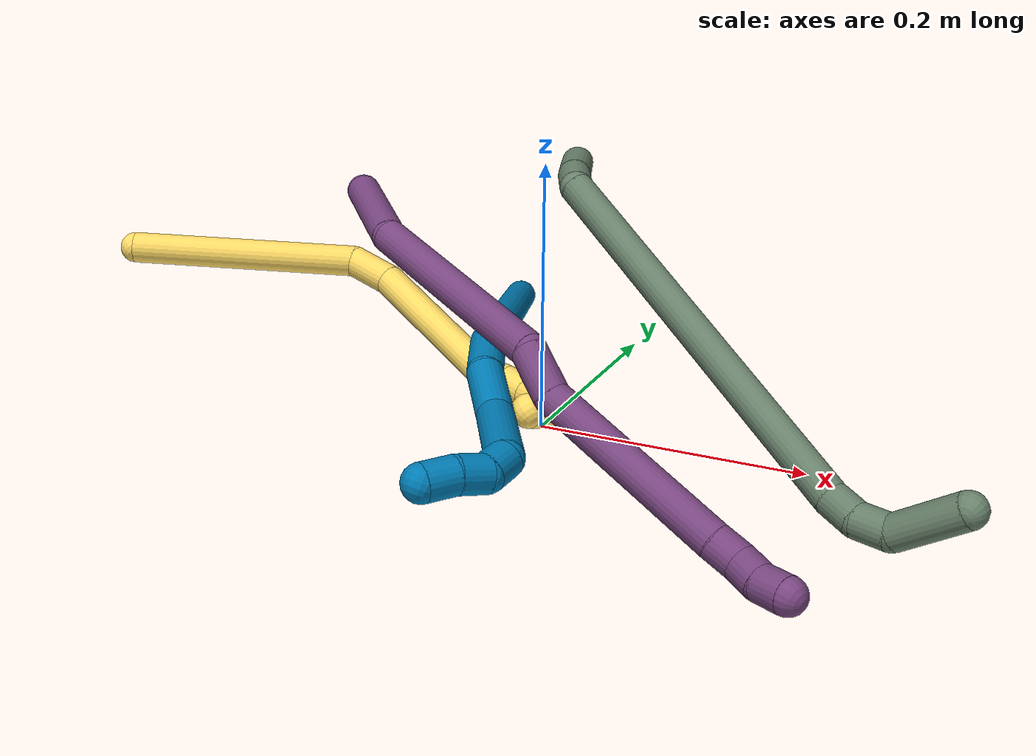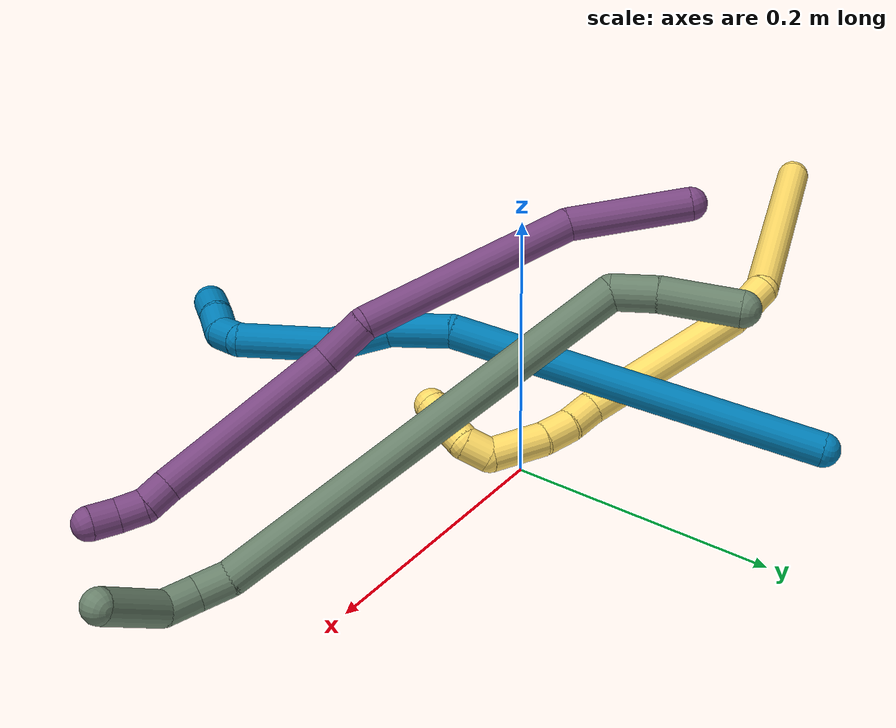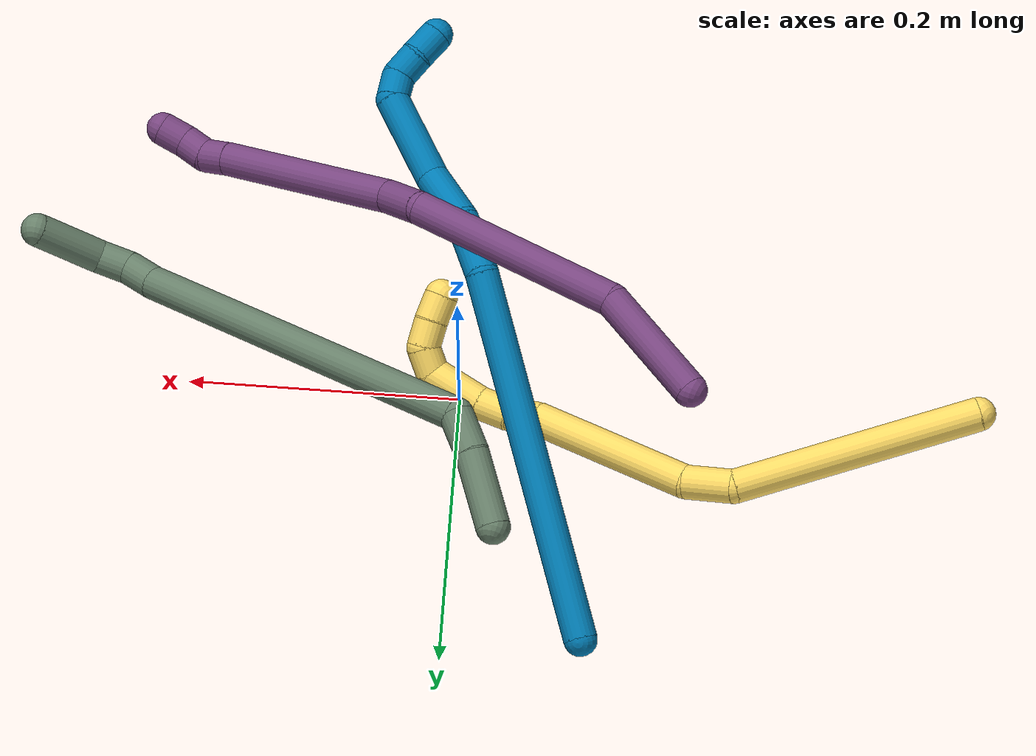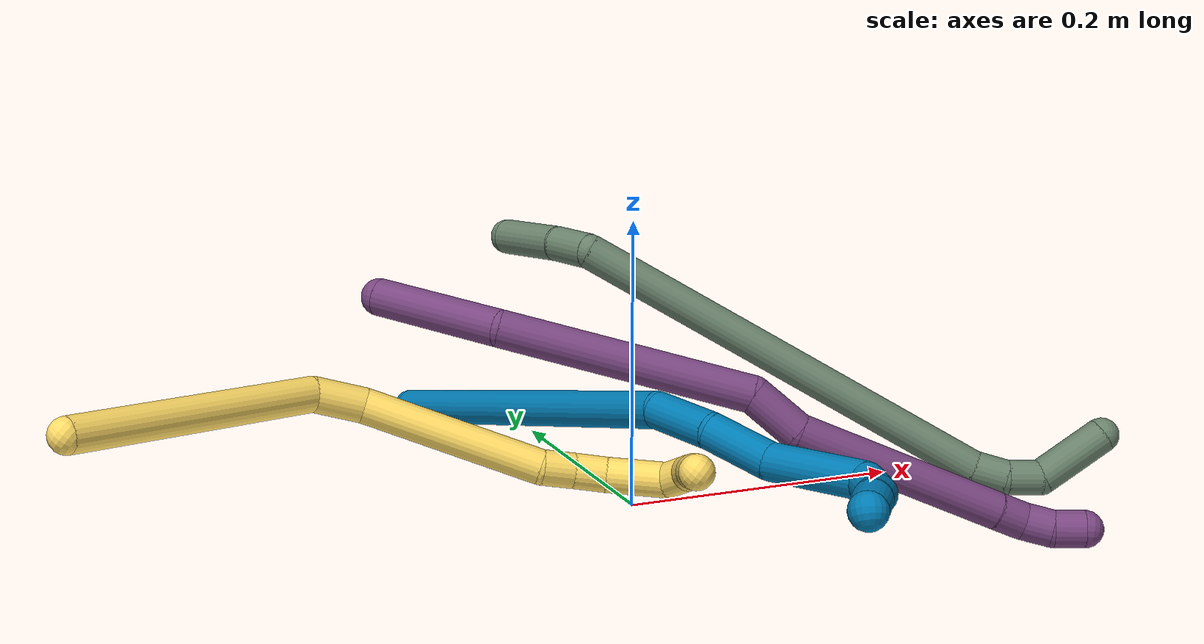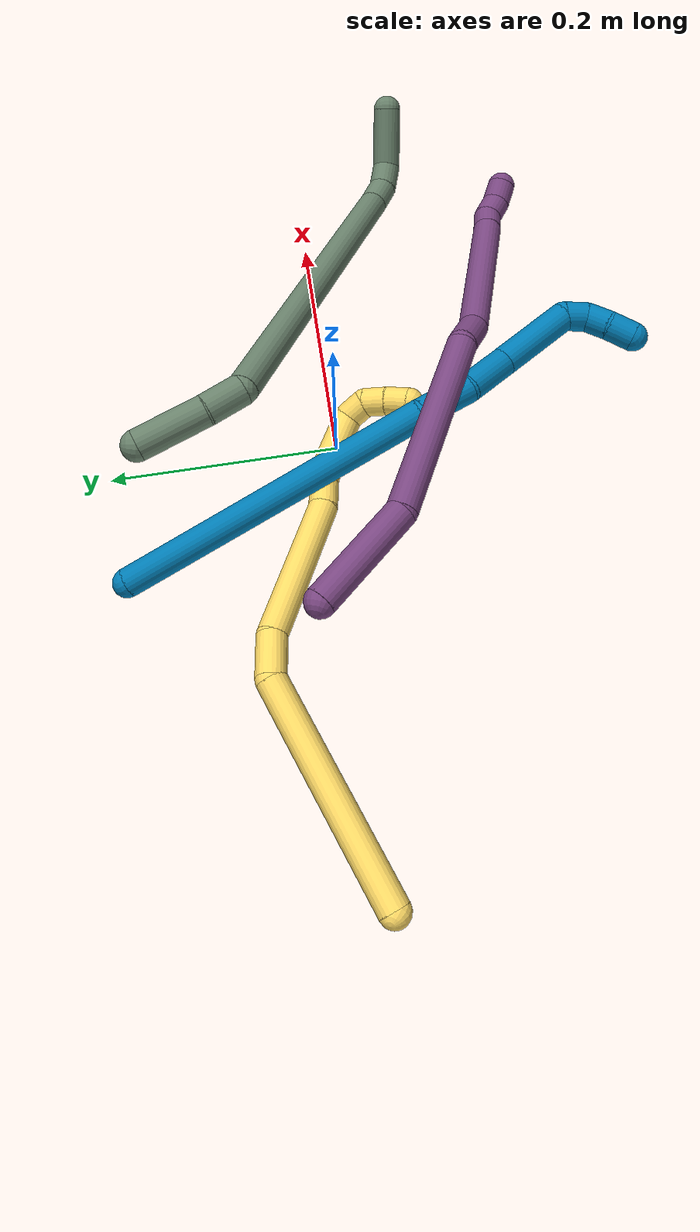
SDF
<sdf version="1.7">
 <world name="default">
  <model name="bin">
   <static>1</static>
   <link name="bottom">
    <collision name="collision-bottom">
     <pose>0 0 -0.01 0 -0 0</pose>
     <geometry><box><size>0.8 0.6 0.02</size></box></geometry>
     <surface>
      <friction><ode><mu>100</mu><mu2>100</mu2></ode></friction>
      <contact><collide_bitmask>65535</collide_bitmask></contact>
     </surface>
    </collision>
   </link>
   <link name="west_wall">
    <collision name="collision-west_wall">
     <pose>-0.41 0 0.1 0 -0 0</pose>
     <geometry><box><size>0.02 0.6 0.2</size></box></geometry>
     <surface>
      <friction><ode><mu>100</mu><mu2>100</mu2></ode></friction>
      <contact><collide_bitmask>65535</collide_bitmask></contact>
     </surface>
    </collision>
   </link>
   <link name="east_wall">
    <collision name="collision-east_wall">
     <pose>0.41 0 0.1 0 -0 0</pose>
     <geometry><box><size>0.02 0.6 0.2</size></box></geometry>
     <surface>
      <friction><ode><mu>100</mu><mu2>100</mu2></ode></friction>
      <contact><collide_bitmask>65535</collide_bitmask></contact>
     </surface>
    </collision>
   </link>
   <link name="south_wall">
    <collision name="collision-south_wall">
     <pose>0 -0.31 0.1 0 -0 0</pose>
     <geometry><box><size>0.8 0.02 0.2</size></box></geometry>
     <surface>
      <friction><ode><mu>100</mu><mu2>100</mu2></ode></friction>
      <contact><collide_bitmask>65535</collide_bitmask></contact>
     </surface>
    </collision>
   </link>
   <link name="north_wall">
    <collision name="collision-north_wall">
     <pose>0 0.31 0.1 0 -0 0</pose>
     <geometry><box><size>0.8 0.02 0.2</size></box></geometry>
     <surface>
      <friction><ode><mu>100</mu><mu2>100</mu2></ode></friction>
      <contact><collide_bitmask>65535</collide_bitmask></contact>
     </surface>
    </collision>
   </link>
  </model>
  <model name="5">
   <static>0</static>
   <link name="5">
    <collision name="collision-cylinder-e_1_1_4">
     <pose>0.069428 0.036761 -0.048498 -2.493 0.851104 -1.86529</pose>
     <geometry><cylinder><radius>0.0125</radius><length>0.184647</length></cylinder></geometry>
     <surface>
      <friction><ode><mu>1.16</mu><mu2>1.16</mu2><slip1>0</slip1><slip2>0</slip2></ode></friction>
      <contact><ode><kp>1e+06</kp><kd>1</kd><max_vel>0</max_vel><min_depth>0.001</min_depth></ode></contact>
     </surface>
    </collision>
    <visual name="visual-cylinder-e_1_1_4">
     <pose>0.069428 0.036761 -0.048498 -2.493 0.851104 -1.86529</pose>
     <geometry><cylinder><radius>0.0125</radius><length>0.184647</length></cylinder></geometry>
     <material><ambient>1 0.858824 0.4 1</ambient></material>
    </visual>
    <collision name="collision-cylinder-e_2_4_5">
     <pose>0.147449 0.07552 -0.113034 -3.01758 0.488652 -2.65346</pose>
     <geometry><cylinder><radius>0.0125</radius><length>0.036609</length></cylinder></geometry>
     <surface>
      <friction><ode><mu>1.16</mu><mu2>1.16</mu2><slip1>0</slip1><slip2>0</slip2></ode></friction>
      <contact><ode><kp>1e+06</kp><kd>1</kd><max_vel>0</max_vel><min_depth>0.001</min_depth></ode></contact>
     </surface>
    </collision>
    <visual name="visual-cylinder-e_2_4_5">
     <pose>0.147449 0.07552 -0.113034 -3.01758 0.488652 -2.65346</pose>
     <geometry><cylinder><radius>0.0125</radius><length>0.036609</length></cylinder></geometry>
     <material><ambient>1 0.858824 0.4 1</ambient></material>
    </visual>
    <collision name="collision-cylinder-e_3_5_6">
     <pose>0.17445 0.06833 -0.19036 2.99277 0.288733 2.19391</pose>
     <geometry><cylinder><radius>0.0125</radius><length>0.129298</length></cylinder></geometry>
     <surface>
      <friction><ode><mu>1.16</mu><mu2>1.16</mu2><slip1>0</slip1><slip2>0</slip2></ode></friction>
      <contact><ode><kp>1e+06</kp><kd>1</kd><max_vel>0</max_vel><min_depth>0.001</min_depth></ode></contact>
     </surface>
    </collision>
    <visual name="visual-cylinder-e_3_5_6">
     <pose>0.17445 0.06833 -0.19036 2.99277 0.288733 2.19391</pose>
     <geometry><cylinder><radius>0.0125</radius><length>0.129298</length></cylinder></geometry>
     <material><ambient>1 0.858824 0.4 1</ambient></material>
    </visual>
    <collision name="collision-cylinder-e_4_6_7">
     <pose>0.199181 0.059407 -0.261474 -3.11459 0.571635 -3.04978</pose>
     <geometry><cylinder><radius>0.0125</radius><length>0.023376</length></cylinder></geometry>
     <surface>
      <friction><ode><mu>1.16</mu><mu2>1.16</mu2><slip1>0</slip1><slip2>0</slip2></ode></friction>
      <contact><ode><kp>1e+06</kp><kd>1</kd><max_vel>0</max_vel><min_depth>0.001</min_depth></ode></contact>
     </surface>
    </collision>
    <visual name="visual-cylinder-e_4_6_7">
     <pose>0.199181 0.059407 -0.261474 -3.11459 0.571635 -3.04978</pose>
     <geometry><cylinder><radius>0.0125</radius><length>0.023376</length></cylinder></geometry>
     <material><ambient>1 0.858824 0.4 1</ambient></material>
    </visual>
    <collision name="collision-cylinder-e_5_7_8">
     <pose>0.211092 0.057743 -0.281292 2.95087 0.502154 2.42771</pose>
     <geometry><cylinder><radius>0.0125</radius><length>0.02322</length></cylinder></geometry>
     <surface>
      <friction><ode><mu>1.16</mu><mu2>1.16</mu2><slip1>0</slip1><slip2>0</slip2></ode></friction>
      <contact><ode><kp>1e+06</kp><kd>1</kd><max_vel>0</max_vel><min_depth>0.001</min_depth></ode></contact>
     </surface>
    </collision>
    <visual name="visual-cylinder-e_5_7_8">
     <pose>0.211092 0.057743 -0.281292 2.95087 0.502154 2.42771</pose>
     <geometry><cylinder><radius>0.0125</radius><length>0.02322</length></cylinder></geometry>
     <material><ambient>1 0.858824 0.4 1</ambient></material>
    </visual>
    <collision name="collision-cylinder-e_6_8_9">
     <pose>0.226078 0.048495 -0.308769 2.74518 0.460286 1.72425</pose>
     <geometry><cylinder><radius>0.0125</radius><length>0.042314</length></cylinder></geometry>
     <surface>
      <friction><ode><mu>1.16</mu><mu2>1.16</mu2><slip1>0</slip1><slip2>0</slip2></ode></friction>
      <contact><ode><kp>1e+06</kp><kd>1</kd><max_vel>0</max_vel><min_depth>0.001</min_depth></ode></contact>
     </surface>
    </collision>
    <visual name="visual-cylinder-e_6_8_9">
     <pose>0.226078 0.048495 -0.308769 2.74518 0.460286 1.72425</pose>
     <geometry><cylinder><radius>0.0125</radius><length>0.042314</length></cylinder></geometry>
     <material><ambient>1 0.858824 0.4 1</ambient></material>
    </visual>
    <collision name="collision-cylinder-e_7_9_10">
     <pose>0.238784 0.032104 -0.329635 1.92747 0.329199 0.469483</pose>
     <geometry><cylinder><radius>0.0125</radius><length>0.020462</length></cylinder></geometry>
     <surface>
      <friction><ode><mu>1.16</mu><mu2>1.16</mu2><slip1>0</slip1><slip2>0</slip2></ode></friction>
      <contact><ode><kp>1e+06</kp><kd>1</kd><max_vel>0</max_vel><min_depth>0.001</min_depth></ode></contact>
     </surface>
    </collision>
    <visual name="visual-cylinder-e_7_9_10">
     <pose>0.238784 0.032104 -0.329635 1.92747 0.329199 0.469483</pose>
     <geometry><cylinder><radius>0.0125</radius><length>0.020462</length></cylinder></geometry>
     <material><ambient>1 0.858824 0.4 1</ambient></material>
    </visual>
    <collision name="collision-cylinder-e_8_10_11">
     <pose>0.239998 0.013229 -0.333154 1.58493 -0.210335 -0.213307</pose>
     <geometry><cylinder><radius>0.0125</radius><length>0.02005</length></cylinder></geometry>
     <surface>
      <friction><ode><mu>1.16</mu><mu2>1.16</mu2><slip1>0</slip1><slip2>0</slip2></ode></friction>
      <contact><ode><kp>1e+06</kp><kd>1</kd><max_vel>0</max_vel><min_depth>0.001</min_depth></ode></contact>
     </surface>
    </collision>
    <visual name="visual-cylinder-e_8_10_11">
     <pose>0.239998 0.013229 -0.333154 1.58493 -0.210335 -0.213307</pose>
     <geometry><cylinder><radius>0.0125</radius><length>0.02005</length></cylinder></geometry>
     <material><ambient>1 0.858824 0.4 1</ambient></material>
    </visual>
    <collision name="collision-cylinder-e_9_11_2">
     <pose>0.234775 -0.006083 -0.333144 1.55516 -0.318008 -0.313155</pose>
     <geometry><cylinder><radius>0.0125</radius><length>0.020024</length></cylinder></geometry>
     <surface>
      <friction><ode><mu>1.16</mu><mu2>1.16</mu2><slip1>0</slip1><slip2>0</slip2></ode></friction>
      <contact><ode><kp>1e+06</kp><kd>1</kd><max_vel>0</max_vel><min_depth>0.001</min_depth></ode></contact>
     </surface>
    </collision>
    <visual name="visual-cylinder-e_9_11_2">
     <pose>0.234775 -0.006083 -0.333144 1.55516 -0.318008 -0.313155</pose>
     <geometry><cylinder><radius>0.0125</radius><length>0.020024</length></cylinder></geometry>
     <material><ambient>1 0.858824 0.4 1</ambient></material>
    </visual>
    <collision name="collision-sphere-2">
     <pose>0.231644 -0.015592 -0.332995 0 -0 0</pose>
     <geometry><sphere><radius>0.0125</radius></sphere></geometry>
     <surface>
      <friction><ode><mu>1.16</mu><mu2>1.16</mu2><slip1>0</slip1><slip2>0</slip2></ode></friction>
      <contact><ode><kp>1e+06</kp><kd>1</kd><max_vel>0</max_vel><min_depth>0.001</min_depth></ode></contact>
     </surface>
    </collision>
    <visual name="visual-sphere-2">
     <pose>0.231644 -0.015592 -0.332995 0 -0 0</pose>
     <geometry><sphere><radius>0.0125</radius></sphere></geometry>
     <material><ambient>1 0.858824 0.4 1</ambient></material>
    </visual>
    <collision name="collision-sphere-11">
     <pose>0.237905 0.003426 -0.333293 0 -0 0</pose>
     <geometry><sphere><radius>0.0125</radius></sphere></geometry>
     <surface>
      <friction><ode><mu>1.16</mu><mu2>1.16</mu2><slip1>0</slip1><slip2>0</slip2></ode></friction>
      <contact><ode><kp>1e+06</kp><kd>1</kd><max_vel>0</max_vel><min_depth>0.001</min_depth></ode></contact>
     </surface>
    </collision>
    <visual name="visual-sphere-11">
     <pose>0.237905 0.003426 -0.333293 0 -0 0</pose>
     <geometry><sphere><radius>0.0125</radius></sphere></geometry>
     <material><ambient>1 0.858824 0.4 1</ambient></material>
    </visual>
    <collision name="collision-sphere-10">
     <pose>0.242092 0.023032 -0.333016 0 -0 0</pose>
     <geometry><sphere><radius>0.0125</radius></sphere></geometry>
     <surface>
      <friction><ode><mu>1.16</mu><mu2>1.16</mu2><slip1>0</slip1><slip2>0</slip2></ode></friction>
      <contact><ode><kp>1e+06</kp><kd>1</kd><max_vel>0</max_vel><min_depth>0.001</min_depth></ode></contact>
     </surface>
    </collision>
    <visual name="visual-sphere-10">
     <pose>0.242092 0.023032 -0.333016 0 -0 0</pose>
     <geometry><sphere><radius>0.0125</radius></sphere></geometry>
     <material><ambient>1 0.858824 0.4 1</ambient></material>
    </visual>
    <collision name="collision-sphere-9">
     <pose>0.235477 0.041176 -0.326255 0 -0 0</pose>
     <geometry><sphere><radius>0.0125</radius></sphere></geometry>
     <surface>
      <friction><ode><mu>1.16</mu><mu2>1.16</mu2><slip1>0</slip1><slip2>0</slip2></ode></friction>
      <contact><ode><kp>1e+06</kp><kd>1</kd><max_vel>0</max_vel><min_depth>0.001</min_depth></ode></contact>
     </surface>
    </collision>
    <visual name="visual-sphere-9">
     <pose>0.235477 0.041176 -0.326255 0 -0 0</pose>
     <geometry><sphere><radius>0.0125</radius></sphere></geometry>
     <material><ambient>1 0.858824 0.4 1</ambient></material>
    </visual>
    <collision name="collision-sphere-4">
     <pose>0.138856 0.073521 -0.096995 0 -0 0</pose>
     <geometry><sphere><radius>0.0125</radius></sphere></geometry>
     <surface>
      <friction><ode><mu>1.16</mu><mu2>1.16</mu2><slip1>0</slip1><slip2>0</slip2></ode></friction>
      <contact><ode><kp>1e+06</kp><kd>1</kd><max_vel>0</max_vel><min_depth>0.001</min_depth></ode></contact>
     </surface>
    </collision>
    <visual name="visual-sphere-4">
     <pose>0.138856 0.073521 -0.096995 0 -0 0</pose>
     <geometry><sphere><radius>0.0125</radius></sphere></geometry>
     <material><ambient>1 0.858824 0.4 1</ambient></material>
    </visual>
    <collision name="collision-sphere-1">
     <geometry><sphere><radius>0.0125</radius></sphere></geometry>
     <surface>
      <friction><ode><mu>1.16</mu><mu2>1.16</mu2><slip1>0</slip1><slip2>0</slip2></ode></friction>
      <contact><ode><kp>1e+06</kp><kd>1</kd><max_vel>0</max_vel><min_depth>0.001</min_depth></ode></contact>
     </surface>
    </collision>
    <visual name="visual-sphere-1">
     <geometry><sphere><radius>0.0125</radius></sphere></geometry>
     <material><ambient>1 0.858824 0.4 1</ambient></material>
    </visual>
    <collision name="collision-sphere-8">
     <pose>0.21668 0.055814 -0.291284 0 -0 0</pose>
     <geometry><sphere><radius>0.0125</radius></sphere></geometry>
     <surface>
      <friction><ode><mu>1.16</mu><mu2>1.16</mu2><slip1>0</slip1><slip2>0</slip2></ode></friction>
      <contact><ode><kp>1e+06</kp><kd>1</kd><max_vel>0</max_vel><min_depth>0.001</min_depth></ode></contact>
     </surface>
    </collision>
    <visual name="visual-sphere-8">
     <pose>0.21668 0.055814 -0.291284 0 -0 0</pose>
     <geometry><sphere><radius>0.0125</radius></sphere></geometry>
     <material><ambient>1 0.858824 0.4 1</ambient></material>
    </visual>
    <collision name="collision-sphere-5">
     <pose>0.156042 0.077519 -0.129072 0 -0 0</pose>
     <geometry><sphere><radius>0.0125</radius></sphere></geometry>
     <surface>
      <friction><ode><mu>1.16</mu><mu2>1.16</mu2><slip1>0</slip1><slip2>0</slip2></ode></friction>
      <contact><ode><kp>1e+06</kp><kd>1</kd><max_vel>0</max_vel><min_depth>0.001</min_depth></ode></contact>
     </surface>
    </collision>
    <visual name="visual-sphere-5">
     <pose>0.156042 0.077519 -0.129072 0 -0 0</pose>
     <geometry><sphere><radius>0.0125</radius></sphere></geometry>
     <material><ambient>1 0.858824 0.4 1</ambient></material>
    </visual>
    <collision name="collision-sphere-6">
     <pose>0.192858 0.059141 -0.251647 0 -0 0</pose>
     <geometry><sphere><radius>0.0125</radius></sphere></geometry>
     <surface>
      <friction><ode><mu>1.16</mu><mu2>1.16</mu2><slip1>0</slip1><slip2>0</slip2></ode></friction>
      <contact><ode><kp>1e+06</kp><kd>1</kd><max_vel>0</max_vel><min_depth>0.001</min_depth></ode></contact>
     </surface>
    </collision>
    <visual name="visual-sphere-6">
     <pose>0.192858 0.059141 -0.251647 0 -0 0</pose>
     <geometry><sphere><radius>0.0125</radius></sphere></geometry>
     <material><ambient>1 0.858824 0.4 1</ambient></material>
    </visual>
    <collision name="collision-sphere-7">
     <pose>0.205504 0.059672 -0.2713 0 -0 0</pose>
     <geometry><sphere><radius>0.0125</radius></sphere></geometry>
     <surface>
      <friction><ode><mu>1.16</mu><mu2>1.16</mu2><slip1>0</slip1><slip2>0</slip2></ode></friction>
      <contact><ode><kp>1e+06</kp><kd>1</kd><max_vel>0</max_vel><min_depth>0.001</min_depth></ode></contact>
     </surface>
    </collision>
    <visual name="visual-sphere-7">
     <pose>0.205504 0.059672 -0.2713 0 -0 0</pose>
     <geometry><sphere><radius>0.0125</radius></sphere></geometry>
     <material><ambient>1 0.858824 0.4 1</ambient></material>
    </visual>
    <inertial>
     <pose>0.148593 0.047938 -0.167022 0 -0 0</pose>
     <mass>0.5</mass>
     <inertia>
      <ixx>-0.000377</ixx>
      <ixy>0</ixy>
      <ixz>0</ixz>
      <iyy>0.000291</iyy>
      <iyz>0</iyz>
      <izz>-0.000665</izz>
     </inertia>
    </inertial>
   </link>
   <pose>-0.376824 0.013978 0.088391 -0.682686 -0.679341 0.383518</pose>
  </model>
  <model name="9">
   <static>0</static>
   <link name="9">
    <collision name="collision-cylinder-e_1_1_4">
     <pose>-0.014121 -0.13249 -0.036331 1.83844 -0.102425 -0.134209</pose>
     <geometry><cylinder><radius>0.0125</radius><length>0.27621</length></cylinder></geometry>
     <surface>
      <friction><ode><mu>1.16</mu><mu2>1.16</mu2><slip1>0</slip1><slip2>0</slip2></ode></friction>
      <contact><ode><kp>1e+06</kp><kd>1</kd><max_vel>0</max_vel><min_depth>0.001</min_depth></ode></contact>
     </surface>
    </collision>
    <visual name="visual-cylinder-e_1_1_4">
     <pose>-0.014121 -0.13249 -0.036331 1.83844 -0.102425 -0.134209</pose>
     <geometry><cylinder><radius>0.0125</radius><length>0.27621</length></cylinder></geometry>
     <material><ambient>0 0.490196 0.709804 1</ambient></material>
    </visual>
    <collision name="collision-cylinder-e_2_4_5">
     <pose>-0.02708 -0.285361 -0.084446 2.09501 0.049286 0.085392</pose>
     <geometry><cylinder><radius>0.0125</radius><length>0.047143</length></cylinder></geometry>
     <surface>
      <friction><ode><mu>1.16</mu><mu2>1.16</mu2><slip1>0</slip1><slip2>0</slip2></ode></friction>
      <contact><ode><kp>1e+06</kp><kd>1</kd><max_vel>0</max_vel><min_depth>0.001</min_depth></ode></contact>
     </surface>
    </collision>
    <visual name="visual-cylinder-e_2_4_5">
     <pose>-0.02708 -0.285361 -0.084446 2.09501 0.049286 0.085392</pose>
     <geometry><cylinder><radius>0.0125</radius><length>0.047143</length></cylinder></geometry>
     <material><ambient>0 0.490196 0.709804 1</ambient></material>
    </visual>
    <collision name="collision-cylinder-e_3_5_6">
     <pose>-0.019238 -0.322954 -0.109285 2.21973 0.299948 0.59076</pose>
     <geometry><cylinder><radius>0.0125</radius><length>0.045224</length></cylinder></geometry>
     <surface>
      <friction><ode><mu>1.16</mu><mu2>1.16</mu2><slip1>0</slip1><slip2>0</slip2></ode></friction>
      <contact><ode><kp>1e+06</kp><kd>1</kd><max_vel>0</max_vel><min_depth>0.001</min_depth></ode></contact>
     </surface>
    </collision>
    <visual name="visual-cylinder-e_3_5_6">
     <pose>-0.019238 -0.322954 -0.109285 2.21973 0.299948 0.59076</pose>
     <geometry><cylinder><radius>0.0125</radius><length>0.045224</length></cylinder></geometry>
     <material><ambient>0 0.490196 0.709804 1</ambient></material>
    </visual>
    <collision name="collision-cylinder-e_4_6_7">
     <pose>-0.008015 -0.371744 -0.134955 1.95085 0.132774 0.195678</pose>
     <geometry><cylinder><radius>0.0125</radius><length>0.068615</length></cylinder></geometry>
     <surface>
      <friction><ode><mu>1.16</mu><mu2>1.16</mu2><slip1>0</slip1><slip2>0</slip2></ode></friction>
      <contact><ode><kp>1e+06</kp><kd>1</kd><max_vel>0</max_vel><min_depth>0.001</min_depth></ode></contact>
     </surface>
    </collision>
    <visual name="visual-cylinder-e_4_6_7">
     <pose>-0.008015 -0.371744 -0.134955 1.95085 0.132774 0.195678</pose>
     <geometry><cylinder><radius>0.0125</radius><length>0.068615</length></cylinder></geometry>
     <material><ambient>0 0.490196 0.709804 1</ambient></material>
    </visual>
    <collision name="collision-cylinder-e_5_7_8">
     <pose>-0.00779 -0.410075 -0.153699 2.30788 -0.442139 -0.93932</pose>
     <geometry><cylinder><radius>0.0125</radius><length>0.020177</length></cylinder></geometry>
     <surface>
      <friction><ode><mu>1.16</mu><mu2>1.16</mu2><slip1>0</slip1><slip2>0</slip2></ode></friction>
      <contact><ode><kp>1e+06</kp><kd>1</kd><max_vel>0</max_vel><min_depth>0.001</min_depth></ode></contact>
     </surface>
    </collision>
    <visual name="visual-cylinder-e_5_7_8">
     <pose>-0.00779 -0.410075 -0.153699 2.30788 -0.442139 -0.93932</pose>
     <geometry><cylinder><radius>0.0125</radius><length>0.020177</length></cylinder></geometry>
     <material><ambient>0 0.490196 0.709804 1</ambient></material>
    </visual>
    <collision name="collision-cylinder-e_6_8_9">
     <pose>-0.020923 -0.420967 -0.163262 2.26319 -1.02295 -1.7478</pose>
     <geometry><cylinder><radius>0.0125</radius><length>0.020657</length></cylinder></geometry>
     <surface>
      <friction><ode><mu>1.16</mu><mu2>1.16</mu2><slip1>0</slip1><slip2>0</slip2></ode></friction>
      <contact><ode><kp>1e+06</kp><kd>1</kd><max_vel>0</max_vel><min_depth>0.001</min_depth></ode></contact>
     </surface>
    </collision>
    <visual name="visual-cylinder-e_6_8_9">
     <pose>-0.020923 -0.420967 -0.163262 2.26319 -1.02295 -1.7478</pose>
     <geometry><cylinder><radius>0.0125</radius><length>0.020657</length></cylinder></geometry>
     <material><ambient>0 0.490196 0.709804 1</ambient></material>
    </visual>
    <collision name="collision-cylinder-e_7_9_2">
     <pose>-0.03846 -0.428925 -0.172184 2.53376 -0.916793 -2.00925</pose>
     <geometry><cylinder><radius>0.0125</radius><length>0.021975</length></cylinder></geometry>
     <surface>
      <friction><ode><mu>1.16</mu><mu2>1.16</mu2><slip1>0</slip1><slip2>0</slip2></ode></friction>
      <contact><ode><kp>1e+06</kp><kd>1</kd><max_vel>0</max_vel><min_depth>0.001</min_depth></ode></contact>
     </surface>
    </collision>
    <visual name="visual-cylinder-e_7_9_2">
     <pose>-0.03846 -0.428925 -0.172184 2.53376 -0.916793 -2.00925</pose>
     <geometry><cylinder><radius>0.0125</radius><length>0.021975</length></cylinder></geometry>
     <material><ambient>0 0.490196 0.709804 1</ambient></material>
    </visual>
    <collision name="collision-sphere-2">
     <pose>-0.047181 -0.432743 -0.177671 0 -0 0</pose>
     <geometry><sphere><radius>0.0125</radius></sphere></geometry>
     <surface>
      <friction><ode><mu>1.16</mu><mu2>1.16</mu2><slip1>0</slip1><slip2>0</slip2></ode></friction>
      <contact><ode><kp>1e+06</kp><kd>1</kd><max_vel>0</max_vel><min_depth>0.001</min_depth></ode></contact>
     </surface>
    </collision>
    <visual name="visual-sphere-2">
     <pose>-0.047181 -0.432743 -0.177671 0 -0 0</pose>
     <geometry><sphere><radius>0.0125</radius></sphere></geometry>
     <material><ambient>0 0.490196 0.709804 1</ambient></material>
    </visual>
    <collision name="collision-sphere-9">
     <pose>-0.02974 -0.425108 -0.166696 0 -0 0</pose>
     <geometry><sphere><radius>0.0125</radius></sphere></geometry>
     <surface>
      <friction><ode><mu>1.16</mu><mu2>1.16</mu2><slip1>0</slip1><slip2>0</slip2></ode></friction>
      <contact><ode><kp>1e+06</kp><kd>1</kd><max_vel>0</max_vel><min_depth>0.001</min_depth></ode></contact>
     </surface>
    </collision>
    <visual name="visual-sphere-9">
     <pose>-0.02974 -0.425108 -0.166696 0 -0 0</pose>
     <geometry><sphere><radius>0.0125</radius></sphere></geometry>
     <material><ambient>0 0.490196 0.709804 1</ambient></material>
    </visual>
    <collision name="collision-sphere-4">
     <pose>-0.028241 -0.26498 -0.072662 0 -0 0</pose>
     <geometry><sphere><radius>0.0125</radius></sphere></geometry>
     <surface>
      <friction><ode><mu>1.16</mu><mu2>1.16</mu2><slip1>0</slip1><slip2>0</slip2></ode></friction>
      <contact><ode><kp>1e+06</kp><kd>1</kd><max_vel>0</max_vel><min_depth>0.001</min_depth></ode></contact>
     </surface>
    </collision>
    <visual name="visual-sphere-4">
     <pose>-0.028241 -0.26498 -0.072662 0 -0 0</pose>
     <geometry><sphere><radius>0.0125</radius></sphere></geometry>
     <material><ambient>0 0.490196 0.709804 1</ambient></material>
    </visual>
    <collision name="collision-sphere-1">
     <geometry><sphere><radius>0.0125</radius></sphere></geometry>
     <surface>
      <friction><ode><mu>1.16</mu><mu2>1.16</mu2><slip1>0</slip1><slip2>0</slip2></ode></friction>
      <contact><ode><kp>1e+06</kp><kd>1</kd><max_vel>0</max_vel><min_depth>0.001</min_depth></ode></contact>
     </surface>
    </collision>
    <visual name="visual-sphere-1">
     <geometry><sphere><radius>0.0125</radius></sphere></geometry>
     <material><ambient>0 0.490196 0.709804 1</ambient></material>
    </visual>
    <collision name="collision-sphere-8">
     <pose>-0.012106 -0.416826 -0.159828 0 -0 0</pose>
     <geometry><sphere><radius>0.0125</radius></sphere></geometry>
     <surface>
      <friction><ode><mu>1.16</mu><mu2>1.16</mu2><slip1>0</slip1><slip2>0</slip2></ode></friction>
      <contact><ode><kp>1e+06</kp><kd>1</kd><max_vel>0</max_vel><min_depth>0.001</min_depth></ode></contact>
     </surface>
    </collision>
    <visual name="visual-sphere-8">
     <pose>-0.012106 -0.416826 -0.159828 0 -0 0</pose>
     <geometry><sphere><radius>0.0125</radius></sphere></geometry>
     <material><ambient>0 0.490196 0.709804 1</ambient></material>
    </visual>
    <collision name="collision-sphere-5">
     <pose>-0.025919 -0.305743 -0.09623 0 -0 0</pose>
     <geometry><sphere><radius>0.0125</radius></sphere></geometry>
     <surface>
      <friction><ode><mu>1.16</mu><mu2>1.16</mu2><slip1>0</slip1><slip2>0</slip2></ode></friction>
      <contact><ode><kp>1e+06</kp><kd>1</kd><max_vel>0</max_vel><min_depth>0.001</min_depth></ode></contact>
     </surface>
    </collision>
    <visual name="visual-sphere-5">
     <pose>-0.025919 -0.305743 -0.09623 0 -0 0</pose>
     <geometry><sphere><radius>0.0125</radius></sphere></geometry>
     <material><ambient>0 0.490196 0.709804 1</ambient></material>
    </visual>
    <collision name="collision-sphere-6">
     <pose>-0.012557 -0.340165 -0.12234 0 -0 0</pose>
     <geometry><sphere><radius>0.0125</radius></sphere></geometry>
     <surface>
      <friction><ode><mu>1.16</mu><mu2>1.16</mu2><slip1>0</slip1><slip2>0</slip2></ode></friction>
      <contact><ode><kp>1e+06</kp><kd>1</kd><max_vel>0</max_vel><min_depth>0.001</min_depth></ode></contact>
     </surface>
    </collision>
    <visual name="visual-sphere-6">
     <pose>-0.012557 -0.340165 -0.12234 0 -0 0</pose>
     <geometry><sphere><radius>0.0125</radius></sphere></geometry>
     <material><ambient>0 0.490196 0.709804 1</ambient></material>
    </visual>
    <collision name="collision-sphere-7">
     <pose>-0.003473 -0.403323 -0.14757 0 -0 0</pose>
     <geometry><sphere><radius>0.0125</radius></sphere></geometry>
     <surface>
      <friction><ode><mu>1.16</mu><mu2>1.16</mu2><slip1>0</slip1><slip2>0</slip2></ode></friction>
      <contact><ode><kp>1e+06</kp><kd>1</kd><max_vel>0</max_vel><min_depth>0.001</min_depth></ode></contact>
     </surface>
    </collision>
    <visual name="visual-sphere-7">
     <pose>-0.003473 -0.403323 -0.14757 0 -0 0</pose>
     <geometry><sphere><radius>0.0125</radius></sphere></geometry>
     <material><ambient>0 0.490196 0.709804 1</ambient></material>
    </visual>
    <inertial>
     <pose>-0.016063 -0.233111 -0.076951 0 -0 0</pose>
     <mass>0.5</mass>
     <inertia>
      <ixx>0.001559</ixx>
      <ixy>0</ixy>
      <ixz>0</ixz>
      <iyy>-0.000716</iyy>
      <iyz>0</iyz>
      <izz>0.001904</izz>
     </inertia>
    </inertial>
   </link>
   <pose>-0.101707 0.187458 0.033949 -0.437611 0.348304 0.377551</pose>
  </model>
  <model name="17">
   <static>0</static>
   <link name="17">
    <collision name="collision-cylinder-e_1_1_4">
     <pose>0.000118 -0.013451 -0.024416 2.63806 0.004225 0.016426</pose>
     <geometry><cylinder><radius>0.0125</radius><length>0.055753</length></cylinder></geometry>
     <surface>
      <friction><ode><mu>1.16</mu><mu2>1.16</mu2><slip1>0</slip1><slip2>0</slip2></ode></friction>
      <contact><ode><kp>1e+06</kp><kd>1</kd><max_vel>0</max_vel><min_depth>0.001</min_depth></ode></contact>
     </surface>
    </collision>
    <visual name="visual-cylinder-e_1_1_4">
     <pose>0.000118 -0.013451 -0.024416 2.63806 0.004225 0.016426</pose>
     <geometry><cylinder><radius>0.0125</radius><length>0.055753</length></cylinder></geometry>
     <material><ambient>0.415686 0.509804 0.423529 1</ambient></material>
    </visual>
    <collision name="collision-cylinder-e_2_4_5">
     <pose>0.002137 -0.035263 -0.062028 2.57681 0.121122 0.412032</pose>
     <geometry><cylinder><radius>0.0125</radius><length>0.031473</length></cylinder></geometry>
     <surface>
      <friction><ode><mu>1.16</mu><mu2>1.16</mu2><slip1>0</slip1><slip2>0</slip2></ode></friction>
      <contact><ode><kp>1e+06</kp><kd>1</kd><max_vel>0</max_vel><min_depth>0.001</min_depth></ode></contact>
     </surface>
    </collision>
    <visual name="visual-cylinder-e_2_4_5">
     <pose>0.002137 -0.035263 -0.062028 2.57681 0.121122 0.412032</pose>
     <geometry><cylinder><radius>0.0125</radius><length>0.031473</length></cylinder></geometry>
     <material><ambient>0.415686 0.509804 0.423529 1</ambient></material>
    </visual>
    <collision name="collision-cylinder-e_3_5_6">
     <pose>0.106797 -0.144115 -0.134644 2.10479 0.721769 1.169</pose>
     <geometry><cylinder><radius>0.0125</radius><length>0.311053</length></cylinder></geometry>
     <surface>
      <friction><ode><mu>1.16</mu><mu2>1.16</mu2><slip1>0</slip1><slip2>0</slip2></ode></friction>
      <contact><ode><kp>1e+06</kp><kd>1</kd><max_vel>0</max_vel><min_depth>0.001</min_depth></ode></contact>
     </surface>
    </collision>
    <visual name="visual-cylinder-e_3_5_6">
     <pose>0.106797 -0.144115 -0.134644 2.10479 0.721769 1.169</pose>
     <geometry><cylinder><radius>0.0125</radius><length>0.311053</length></cylinder></geometry>
     <material><ambient>0.415686 0.509804 0.423529 1</ambient></material>
    </visual>
    <collision name="collision-cylinder-e_4_6_7">
     <pose>0.214924 -0.254013 -0.199192 2.06995 0.464499 0.758144</pose>
     <geometry><cylinder><radius>0.0125</radius><length>0.023968</length></cylinder></geometry>
     <surface>
      <friction><ode><mu>1.16</mu><mu2>1.16</mu2><slip1>0</slip1><slip2>0</slip2></ode></friction>
      <contact><ode><kp>1e+06</kp><kd>1</kd><max_vel>0</max_vel><min_depth>0.001</min_depth></ode></contact>
     </surface>
    </collision>
    <visual name="visual-cylinder-e_4_6_7">
     <pose>0.214924 -0.254013 -0.199192 2.06995 0.464499 0.758144</pose>
     <geometry><cylinder><radius>0.0125</radius><length>0.023968</length></cylinder></geometry>
     <material><ambient>0.415686 0.509804 0.423529 1</ambient></material>
    </visual>
    <collision name="collision-cylinder-e_5_7_8">
     <pose>0.223989 -0.274926 -0.206494 1.75748 0.305824 0.367699</pose>
     <geometry><cylinder><radius>0.0125</radius><length>0.024559</length></cylinder></geometry>
     <surface>
      <friction><ode><mu>1.16</mu><mu2>1.16</mu2><slip1>0</slip1><slip2>0</slip2></ode></friction>
      <contact><ode><kp>1e+06</kp><kd>1</kd><max_vel>0</max_vel><min_depth>0.001</min_depth></ode></contact>
     </surface>
    </collision>
    <visual name="visual-cylinder-e_5_7_8">
     <pose>0.223989 -0.274926 -0.206494 1.75748 0.305824 0.367699</pose>
     <geometry><cylinder><radius>0.0125</radius><length>0.024559</length></cylinder></geometry>
     <material><ambient>0.415686 0.509804 0.423529 1</ambient></material>
    </visual>
    <collision name="collision-cylinder-e_6_8_2">
     <pose>0.220917 -0.312132 -0.207612 1.52975 -0.257362 -0.247117</pose>
     <geometry><cylinder><radius>0.0125</radius><length>0.053194</length></cylinder></geometry>
     <surface>
      <friction><ode><mu>1.16</mu><mu2>1.16</mu2><slip1>0</slip1><slip2>0</slip2></ode></friction>
      <contact><ode><kp>1e+06</kp><kd>1</kd><max_vel>0</max_vel><min_depth>0.001</min_depth></ode></contact>
     </surface>
    </collision>
    <visual name="visual-cylinder-e_6_8_2">
     <pose>0.220917 -0.312132 -0.207612 1.52975 -0.257362 -0.247117</pose>
     <geometry><cylinder><radius>0.0125</radius><length>0.053194</length></cylinder></geometry>
     <material><ambient>0.415686 0.509804 0.423529 1</ambient></material>
    </visual>
    <collision name="collision-sphere-2">
     <pose>0.214147 -0.337831 -0.206557 0 -0 0</pose>
     <geometry><sphere><radius>0.0125</radius></sphere></geometry>
     <surface>
      <friction><ode><mu>1.16</mu><mu2>1.16</mu2><slip1>0</slip1><slip2>0</slip2></ode></friction>
      <contact><ode><kp>1e+06</kp><kd>1</kd><max_vel>0</max_vel><min_depth>0.001</min_depth></ode></contact>
     </surface>
    </collision>
    <visual name="visual-sphere-2">
     <pose>0.214147 -0.337831 -0.206557 0 -0 0</pose>
     <geometry><sphere><radius>0.0125</radius></sphere></geometry>
     <material><ambient>0.415686 0.509804 0.423529 1</ambient></material>
    </visual>
    <collision name="collision-sphere-4">
     <pose>0.000236 -0.026902 -0.048833 0 -0 0</pose>
     <geometry><sphere><radius>0.0125</radius></sphere></geometry>
     <surface>
      <friction><ode><mu>1.16</mu><mu2>1.16</mu2><slip1>0</slip1><slip2>0</slip2></ode></friction>
      <contact><ode><kp>1e+06</kp><kd>1</kd><max_vel>0</max_vel><min_depth>0.001</min_depth></ode></contact>
     </surface>
    </collision>
    <visual name="visual-sphere-4">
     <pose>0.000236 -0.026902 -0.048833 0 -0 0</pose>
     <geometry><sphere><radius>0.0125</radius></sphere></geometry>
     <material><ambient>0.415686 0.509804 0.423529 1</ambient></material>
    </visual>
    <collision name="collision-sphere-1">
     <geometry><sphere><radius>0.0125</radius></sphere></geometry>
     <surface>
      <friction><ode><mu>1.16</mu><mu2>1.16</mu2><slip1>0</slip1><slip2>0</slip2></ode></friction>
      <contact><ode><kp>1e+06</kp><kd>1</kd><max_vel>0</max_vel><min_depth>0.001</min_depth></ode></contact>
     </surface>
    </collision>
    <visual name="visual-sphere-1">
     <geometry><sphere><radius>0.0125</radius></sphere></geometry>
     <material><ambient>0.415686 0.509804 0.423529 1</ambient></material>
    </visual>
    <collision name="collision-sphere-8">
     <pose>0.227687 -0.286432 -0.208668 0 -0 0</pose>
     <geometry><sphere><radius>0.0125</radius></sphere></geometry>
     <surface>
      <friction><ode><mu>1.16</mu><mu2>1.16</mu2><slip1>0</slip1><slip2>0</slip2></ode></friction>
      <contact><ode><kp>1e+06</kp><kd>1</kd><max_vel>0</max_vel><min_depth>0.001</min_depth></ode></contact>
     </surface>
    </collision>
    <visual name="visual-sphere-8">
     <pose>0.227687 -0.286432 -0.208668 0 -0 0</pose>
     <geometry><sphere><radius>0.0125</radius></sphere></geometry>
     <material><ambient>0.415686 0.509804 0.423529 1</ambient></material>
    </visual>
    <collision name="collision-sphere-5">
     <pose>0.004038 -0.043624 -0.075224 0 -0 0</pose>
     <geometry><sphere><radius>0.0125</radius></sphere></geometry>
     <surface>
      <friction><ode><mu>1.16</mu><mu2>1.16</mu2><slip1>0</slip1><slip2>0</slip2></ode></friction>
      <contact><ode><kp>1e+06</kp><kd>1</kd><max_vel>0</max_vel><min_depth>0.001</min_depth></ode></contact>
     </surface>
    </collision>
    <visual name="visual-sphere-5">
     <pose>0.004038 -0.043624 -0.075224 0 -0 0</pose>
     <geometry><sphere><radius>0.0125</radius></sphere></geometry>
     <material><ambient>0.415686 0.509804 0.423529 1</ambient></material>
    </visual>
    <collision name="collision-sphere-6">
     <pose>0.209555 -0.244606 -0.194064 0 -0 0</pose>
     <geometry><sphere><radius>0.0125</radius></sphere></geometry>
     <surface>
      <friction><ode><mu>1.16</mu><mu2>1.16</mu2><slip1>0</slip1><slip2>0</slip2></ode></friction>
      <contact><ode><kp>1e+06</kp><kd>1</kd><max_vel>0</max_vel><min_depth>0.001</min_depth></ode></contact>
     </surface>
    </collision>
    <visual name="visual-sphere-6">
     <pose>0.209555 -0.244606 -0.194064 0 -0 0</pose>
     <geometry><sphere><radius>0.0125</radius></sphere></geometry>
     <material><ambient>0.415686 0.509804 0.423529 1</ambient></material>
    </visual>
    <collision name="collision-sphere-7">
     <pose>0.220292 -0.26342 -0.204321 0 -0 0</pose>
     <geometry><sphere><radius>0.0125</radius></sphere></geometry>
     <surface>
      <friction><ode><mu>1.16</mu><mu2>1.16</mu2><slip1>0</slip1><slip2>0</slip2></ode></friction>
      <contact><ode><kp>1e+06</kp><kd>1</kd><max_vel>0</max_vel><min_depth>0.001</min_depth></ode></contact>
     </surface>
    </collision>
    <visual name="visual-sphere-7">
     <pose>0.220292 -0.26342 -0.204321 0 -0 0</pose>
     <geometry><sphere><radius>0.0125</radius></sphere></geometry>
     <material><ambient>0.415686 0.509804 0.423529 1</ambient></material>
    </visual>
    <inertial>
     <pose>0.111394 -0.152261 -0.132168 0 -0 0</pose>
     <mass>0.5</mass>
     <inertia>
      <ixx>0.002535</ixx>
      <ixy>0</ixy>
      <ixz>0</ixz>
      <iyy>0.002516</iyy>
      <iyz>0</iyz>
      <izz>-2.3e-05</izz>
     </inertia>
    </inertial>
   </link>
   <pose>-0.036044 0.149813 0.166298 -1.22893 1.25265 0.187217</pose>
  </model>
  <model name="20">
   <static>0</static>
   <link name="20">
    <collision name="collision-cylinder-e_1_1_4">
     <pose>-0.00139 -0.019272 0.041378 0.435874 -0.030445 -0.006743</pose>
     <geometry><cylinder><radius>0.0125</radius><length>0.091334</length></cylinder></geometry>
     <surface>
      <friction><ode><mu>1.16</mu><mu2>1.16</mu2><slip1>0</slip1><slip2>0</slip2></ode></friction>
      <contact><ode><kp>1e+06</kp><kd>1</kd><max_vel>0</max_vel><min_depth>0.001</min_depth></ode></contact>
     </surface>
    </collision>
    <visual name="visual-cylinder-e_1_1_4">
     <pose>-0.00139 -0.019272 0.041378 0.435874 -0.030445 -0.006743</pose>
     <geometry><cylinder><radius>0.0125</radius><length>0.091334</length></cylinder></geometry>
     <material><ambient>0.478431 0.278431 0.509804 1</ambient></material>
    </visual>
    <collision name="collision-cylinder-e_2_4_5">
     <pose>0.005912 -0.04531 0.166227 0.080882 0.103418 0.004188</pose>
     <geometry><cylinder><radius>0.0125</radius><length>0.16839</length></cylinder></geometry>
     <surface>
      <friction><ode><mu>1.16</mu><mu2>1.16</mu2><slip1>0</slip1><slip2>0</slip2></ode></friction>
      <contact><ode><kp>1e+06</kp><kd>1</kd><max_vel>0</max_vel><min_depth>0.001</min_depth></ode></contact>
     </surface>
    </collision>
    <visual name="visual-cylinder-e_2_4_5">
     <pose>0.005912 -0.04531 0.166227 0.080882 0.103418 0.004188</pose>
     <geometry><cylinder><radius>0.0125</radius><length>0.16839</length></cylinder></geometry>
     <material><ambient>0.478431 0.278431 0.509804 1</ambient></material>
    </visual>
    <collision name="collision-cylinder-e_3_5_6">
     <pose>0.024006 -0.0557 0.265448 0.226159 0.526949 0.061248</pose>
     <geometry><cylinder><radius>0.0125</radius><length>0.037396</length></cylinder></geometry>
     <surface>
      <friction><ode><mu>1.16</mu><mu2>1.16</mu2><slip1>0</slip1><slip2>0</slip2></ode></friction>
      <contact><ode><kp>1e+06</kp><kd>1</kd><max_vel>0</max_vel><min_depth>0.001</min_depth></ode></contact>
     </surface>
    </collision>
    <visual name="visual-cylinder-e_3_5_6">
     <pose>0.024006 -0.0557 0.265448 0.226159 0.526949 0.061248</pose>
     <geometry><cylinder><radius>0.0125</radius><length>0.037396</length></cylinder></geometry>
     <material><ambient>0.478431 0.278431 0.509804 1</ambient></material>
    </visual>
    <collision name="collision-cylinder-e_4_6_7">
     <pose>0.052925 -0.056072 0.349679 -0.047441 0.277327 -0.006622</pose>
     <geometry><cylinder><radius>0.0125</radius><length>0.142563</length></cylinder></geometry>
     <surface>
      <friction><ode><mu>1.16</mu><mu2>1.16</mu2><slip1>0</slip1><slip2>0</slip2></ode></friction>
      <contact><ode><kp>1e+06</kp><kd>1</kd><max_vel>0</max_vel><min_depth>0.001</min_depth></ode></contact>
     </surface>
    </collision>
    <visual name="visual-cylinder-e_4_6_7">
     <pose>0.052925 -0.056072 0.349679 -0.047441 0.277327 -0.006622</pose>
     <geometry><cylinder><radius>0.0125</radius><length>0.142563</length></cylinder></geometry>
     <material><ambient>0.478431 0.278431 0.509804 1</ambient></material>
    </visual>
    <collision name="collision-cylinder-e_5_7_8">
     <pose>0.075371 -0.051664 0.427666 -0.121124 0.296865 -0.018134</pose>
     <geometry><cylinder><radius>0.0125</radius><length>0.020029</length></cylinder></geometry>
     <surface>
      <friction><ode><mu>1.16</mu><mu2>1.16</mu2><slip1>0</slip1><slip2>0</slip2></ode></friction>
      <contact><ode><kp>1e+06</kp><kd>1</kd><max_vel>0</max_vel><min_depth>0.001</min_depth></ode></contact>
     </surface>
    </collision>
    <visual name="visual-cylinder-e_5_7_8">
     <pose>0.075371 -0.051664 0.427666 -0.121124 0.296865 -0.018134</pose>
     <geometry><cylinder><radius>0.0125</radius><length>0.020029</length></cylinder></geometry>
     <material><ambient>0.478431 0.278431 0.509804 1</ambient></material>
    </visual>
    <collision name="collision-cylinder-e_6_8_9">
     <pose>0.078736 -0.052664 0.446929 0.217578 0.043548 0.004757</pose>
     <geometry><cylinder><radius>0.0125</radius><length>0.020002</length></cylinder></geometry>
     <surface>
      <friction><ode><mu>1.16</mu><mu2>1.16</mu2><slip1>0</slip1><slip2>0</slip2></ode></friction>
      <contact><ode><kp>1e+06</kp><kd>1</kd><max_vel>0</max_vel><min_depth>0.001</min_depth></ode></contact>
     </surface>
    </collision>
    <visual name="visual-cylinder-e_6_8_9">
     <pose>0.078736 -0.052664 0.446929 0.217578 0.043548 0.004757</pose>
     <geometry><cylinder><radius>0.0125</radius><length>0.020002</length></cylinder></geometry>
     <material><ambient>0.478431 0.278431 0.509804 1</ambient></material>
    </visual>
    <collision name="collision-cylinder-e_7_9_2">
     <pose>0.077663 -0.055161 0.466709 0.03396 -0.149227 -0.002539</pose>
     <geometry><cylinder><radius>0.0125</radius><length>0.020286</length></cylinder></geometry>
     <surface>
      <friction><ode><mu>1.16</mu><mu2>1.16</mu2><slip1>0</slip1><slip2>0</slip2></ode></friction>
      <contact><ode><kp>1e+06</kp><kd>1</kd><max_vel>0</max_vel><min_depth>0.001</min_depth></ode></contact>
     </surface>
    </collision>
    <visual name="visual-cylinder-e_7_9_2">
     <pose>0.077663 -0.055161 0.466709 0.03396 -0.149227 -0.002539</pose>
     <geometry><cylinder><radius>0.0125</radius><length>0.020286</length></cylinder></geometry>
     <material><ambient>0.478431 0.278431 0.509804 1</ambient></material>
    </visual>
    <collision name="collision-sphere-2">
     <pose>0.076155 -0.055502 0.476734 0 -0 0</pose>
     <geometry><sphere><radius>0.0125</radius></sphere></geometry>
     <surface>
      <friction><ode><mu>1.16</mu><mu2>1.16</mu2><slip1>0</slip1><slip2>0</slip2></ode></friction>
      <contact><ode><kp>1e+06</kp><kd>1</kd><max_vel>0</max_vel><min_depth>0.001</min_depth></ode></contact>
     </surface>
    </collision>
    <visual name="visual-sphere-2">
     <pose>0.076155 -0.055502 0.476734 0 -0 0</pose>
     <geometry><sphere><radius>0.0125</radius></sphere></geometry>
     <material><ambient>0.478431 0.278431 0.509804 1</ambient></material>
    </visual>
    <collision name="collision-sphere-9">
     <pose>0.079171 -0.054821 0.456685 0 -0 0</pose>
     <geometry><sphere><radius>0.0125</radius></sphere></geometry>
     <surface>
      <friction><ode><mu>1.16</mu><mu2>1.16</mu2><slip1>0</slip1><slip2>0</slip2></ode></friction>
      <contact><ode><kp>1e+06</kp><kd>1</kd><max_vel>0</max_vel><min_depth>0.001</min_depth></ode></contact>
     </surface>
    </collision>
    <visual name="visual-sphere-9">
     <pose>0.079171 -0.054821 0.456685 0 -0 0</pose>
     <geometry><sphere><radius>0.0125</radius></sphere></geometry>
     <material><ambient>0.478431 0.278431 0.509804 1</ambient></material>
    </visual>
    <collision name="collision-sphere-4">
     <pose>-0.00278 -0.038544 0.082756 0 -0 0</pose>
     <geometry><sphere><radius>0.0125</radius></sphere></geometry>
     <surface>
      <friction><ode><mu>1.16</mu><mu2>1.16</mu2><slip1>0</slip1><slip2>0</slip2></ode></friction>
      <contact><ode><kp>1e+06</kp><kd>1</kd><max_vel>0</max_vel><min_depth>0.001</min_depth></ode></contact>
     </surface>
    </collision>
    <visual name="visual-sphere-4">
     <pose>-0.00278 -0.038544 0.082756 0 -0 0</pose>
     <geometry><sphere><radius>0.0125</radius></sphere></geometry>
     <material><ambient>0.478431 0.278431 0.509804 1</ambient></material>
    </visual>
    <collision name="collision-sphere-1">
     <geometry><sphere><radius>0.0125</radius></sphere></geometry>
     <surface>
      <friction><ode><mu>1.16</mu><mu2>1.16</mu2><slip1>0</slip1><slip2>0</slip2></ode></friction>
      <contact><ode><kp>1e+06</kp><kd>1</kd><max_vel>0</max_vel><min_depth>0.001</min_depth></ode></contact>
     </surface>
    </collision>
    <visual name="visual-sphere-1">
     <geometry><sphere><radius>0.0125</radius></sphere></geometry>
     <material><ambient>0.478431 0.278431 0.509804 1</ambient></material>
    </visual>
    <collision name="collision-sphere-8">
     <pose>0.0783 -0.050507 0.437172 0 -0 0</pose>
     <geometry><sphere><radius>0.0125</radius></sphere></geometry>
     <surface>
      <friction><ode><mu>1.16</mu><mu2>1.16</mu2><slip1>0</slip1><slip2>0</slip2></ode></friction>
      <contact><ode><kp>1e+06</kp><kd>1</kd><max_vel>0</max_vel><min_depth>0.001</min_depth></ode></contact>
     </surface>
    </collision>
    <visual name="visual-sphere-8">
     <pose>0.0783 -0.050507 0.437172 0 -0 0</pose>
     <geometry><sphere><radius>0.0125</radius></sphere></geometry>
     <material><ambient>0.478431 0.278431 0.509804 1</ambient></material>
    </visual>
    <collision name="collision-sphere-5">
     <pose>0.014603 -0.052076 0.249698 0 -0 0</pose>
     <geometry><sphere><radius>0.0125</radius></sphere></geometry>
     <surface>
      <friction><ode><mu>1.16</mu><mu2>1.16</mu2><slip1>0</slip1><slip2>0</slip2></ode></friction>
      <contact><ode><kp>1e+06</kp><kd>1</kd><max_vel>0</max_vel><min_depth>0.001</min_depth></ode></contact>
     </surface>
    </collision>
    <visual name="visual-sphere-5">
     <pose>0.014603 -0.052076 0.249698 0 -0 0</pose>
     <geometry><sphere><radius>0.0125</radius></sphere></geometry>
     <material><ambient>0.478431 0.278431 0.509804 1</ambient></material>
    </visual>
    <collision name="collision-sphere-6">
     <pose>0.03341 -0.059324 0.281198 0 -0 0</pose>
     <geometry><sphere><radius>0.0125</radius></sphere></geometry>
     <surface>
      <friction><ode><mu>1.16</mu><mu2>1.16</mu2><slip1>0</slip1><slip2>0</slip2></ode></friction>
      <contact><ode><kp>1e+06</kp><kd>1</kd><max_vel>0</max_vel><min_depth>0.001</min_depth></ode></contact>
     </surface>
    </collision>
    <visual name="visual-sphere-6">
     <pose>0.03341 -0.059324 0.281198 0 -0 0</pose>
     <geometry><sphere><radius>0.0125</radius></sphere></geometry>
     <material><ambient>0.478431 0.278431 0.509804 1</ambient></material>
    </visual>
    <collision name="collision-sphere-7">
     <pose>0.072441 -0.052821 0.41816 0 -0 0</pose>
     <geometry><sphere><radius>0.0125</radius></sphere></geometry>
     <surface>
      <friction><ode><mu>1.16</mu><mu2>1.16</mu2><slip1>0</slip1><slip2>0</slip2></ode></friction>
      <contact><ode><kp>1e+06</kp><kd>1</kd><max_vel>0</max_vel><min_depth>0.001</min_depth></ode></contact>
     </surface>
    </collision>
    <visual name="visual-sphere-7">
     <pose>0.072441 -0.052821 0.41816 0 -0 0</pose>
     <geometry><sphere><radius>0.0125</radius></sphere></geometry>
     <material><ambient>0.478431 0.278431 0.509804 1</ambient></material>
    </visual>
    <inertial>
     <pose>0.027943 -0.045348 0.237042 0 -0 0</pose>
     <mass>0.5</mass>
     <inertia>
      <ixx>0.000722</ixx>
      <ixy>0</ixy>
      <ixz>0</ixz>
      <iyy>0.000716</iyy>
      <iyz>0</iyz>
      <izz>-2.2e-05</izz>
     </inertia>
    </inertial>
   </link>
   <pose>-0.167569 0.034253 0.154913 2.47099 1.40589 2.05235</pose>
  </model>
 </world>
</sdf>
